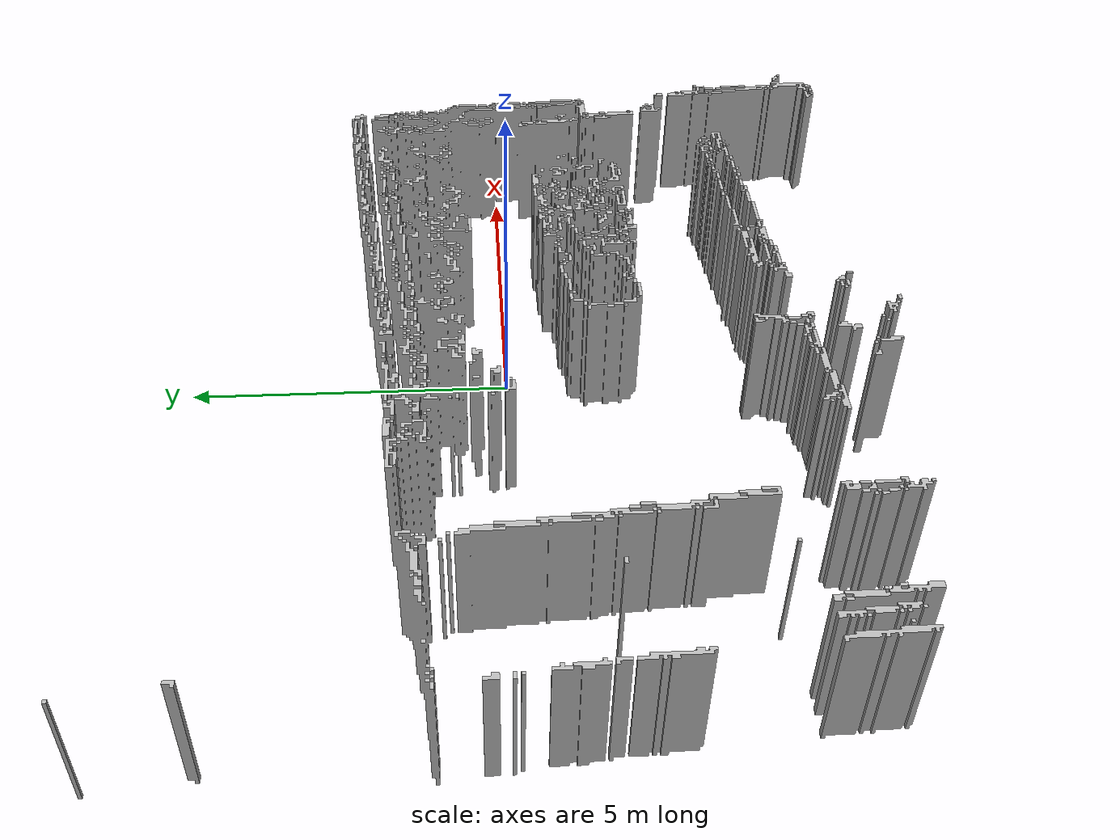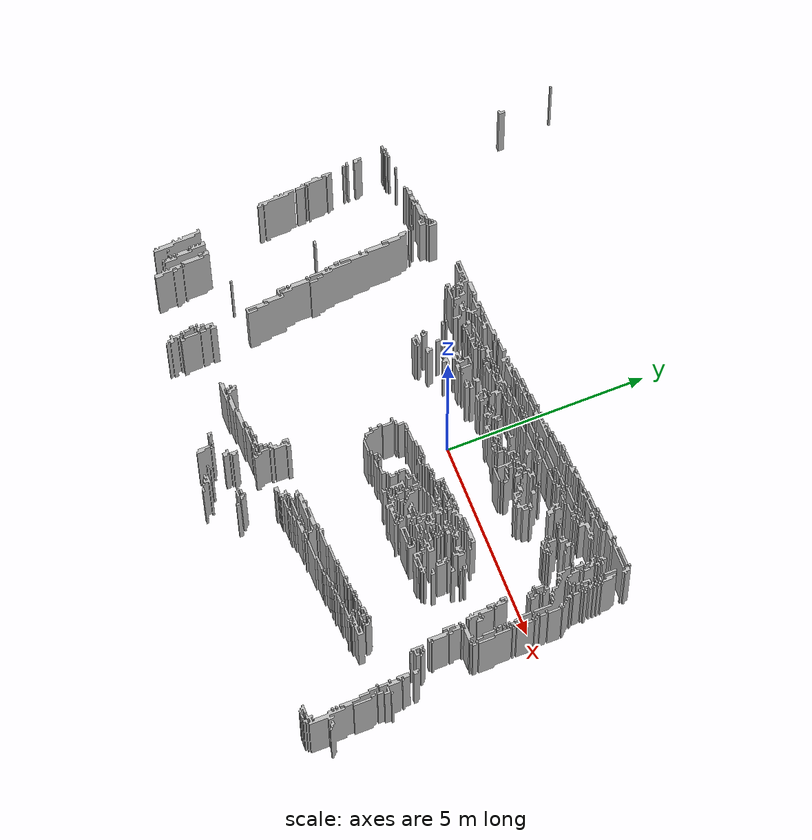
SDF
<?xml version='1.0'?>
<sdf version='1.7'>
  <model name="lobby">
    <link name="lobby_wall">
      <inertial>
        <mass>320</mass>
        <inertia>
          <ixx>0.0</ixx>
          <ixy>0.0</ixy>
          <ixz>0.0</ixz>
          <iyy>0.0</iyy>
          <iyz>0.0</iyz>
          <izz>0.0</izz>
        </inertia>
      </inertial>
      <collision name="collision">
        <pose>0 0 0 0 0 0</pose>
        <geometry>
          <mesh>
            <uri>model://lobby/meshes/map.stl</uri>
          </mesh>
        </geometry>
      </collision>
      <visual name="visual">
        <pose>0 0 0 0 0 0</pose>
        <geometry>
          <mesh>
            <uri>model://lobby/meshes/map.stl</uri>
          </mesh>
        </geometry>
      </visual>
    </link>
    <static>1</static>
  </model>
</sdf>
